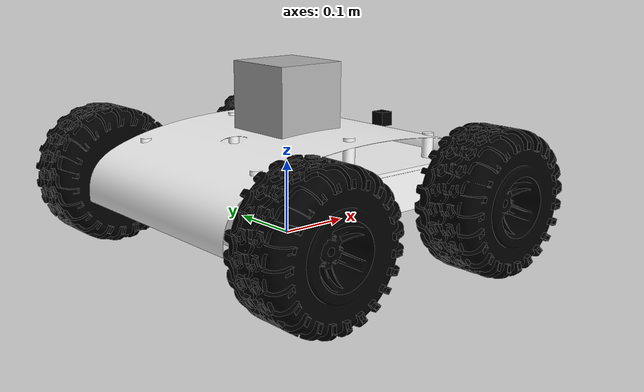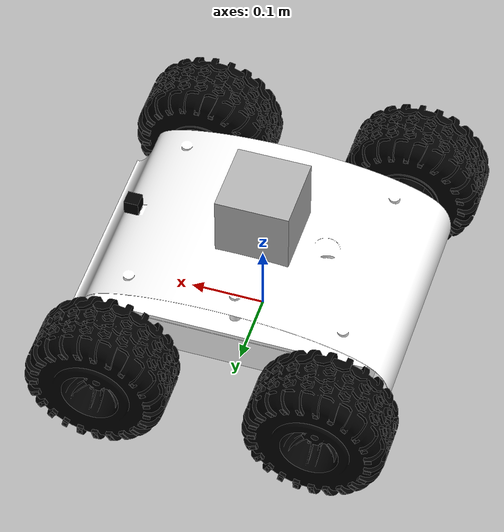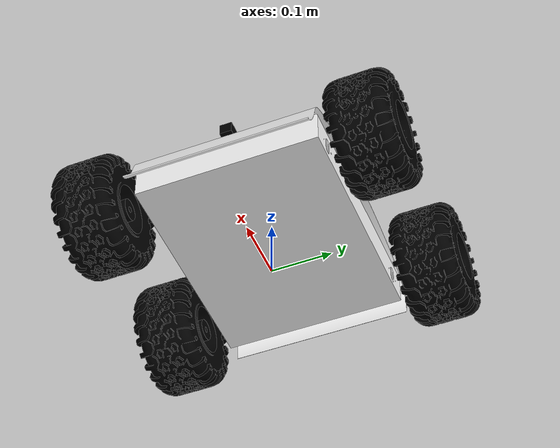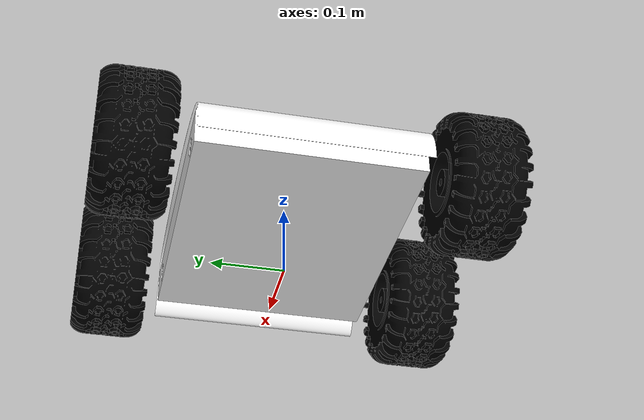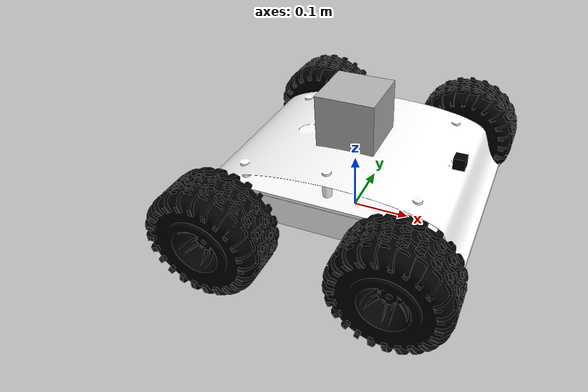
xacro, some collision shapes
<?xml version="1.0"?>

<robot xmlns:xacro="http://www.ros.org/wiki/xacro"
 	xmlns:sensor="http://playerstage.sourceforge.net/gazebo/xmlschema/#sensor"
    	xmlns:controller="http://playerstage.sourceforge.net/gazebo/xmlschema/#controller"
    	xmlns:interface="http://playerstage.sourceforge.net/gazebo/xmlschema/#interface"
	name="agrovexr_xacro">

  <xacro:property name="length_wheel" value="0.099" />
  <xacro:property name="radius_wheel" value="0.105" />
  <xacro:property name="camera_link" value="0.05" />
	<xacro:macro name="default_inertial" params="mass">
               <inertial>
                       <mass value="${mass}" />
                       <inertia ixx="0.00917256595" ixy="0.00000008023" ixz="-0.00000006107"
                                iyy="0.009174216667" iyz="0.00000003539"
                                izz="0.01764646301" />
               </inertial>
	</xacro:macro>
	<xacro:property name="camera_link" value="0.05" />

<!-- /////////////////////////AGROVEX ESTRUCTURA LINKS////////////////////////  -->

	<link name="base_footprint">
   		<visual>
			<geometry>
      				<box size="0.001 0.001 0.001"/>
     			</geometry>
			<origin rpy="0 0 0" xyz="0 0 0"/>
   		</visual>
		<xacro:default_inertial mass="0.0001"/>
 	</link>
 	<xacro:include filename="$(find agrovex_description)/urdf/agrovex.gazebo" />

	<gazebo reference="base_footprint">
		<material>Gazebo/Green</material>
		<turnGravityOff>false</turnGravityOff>
	</gazebo>

	<joint name="base_footprint_joint" type="fixed">
		<origin xyz="0 0 0" />
		<parent link="base_footprint" />
		<child link="base_link" />
	</joint>

	<link name="base_link">
   		<visual>
			<geometry>
      				<mesh filename="package://agrovex_description/meshes/estructura.dae" scale="1 1 1"	/>
     			</geometry>
			<origin	rpy="0 0 1.570796"	xyz="0 0 0.05"	/>
			<material name="white">
				<color rgba="1 1 1 1"/>
			</material>
   		</visual>
		<collision>
			<geometry>
       				<box size="0.49 0.3 0.12"/>
			</geometry>
      <origin rpy="0 0 0"  xyz="0 0 0.09"  />
		</collision>
   	 <inertial>
    	  <mass value="2.09216" />
     		 <origin xyz="0 0 0" rpy="0 0 0"/>
     		 <inertia ixx="1.0e-06" iyy="1.0e-06" izz="1.0e-06" ixy="0" iyz="0" ixz="0"/>
   	 </inertial>
 	</link>

 	<link name="wheel_1">
   		<visual>
     			<geometry>
       				<mesh filename="package://agrovex_description/meshes/wheel_1.dae" scale="1 1 1"	/>
     			</geometry>
			<origin	rpy="0 0 1.570796"	xyz="0 -0.036 -0.06"	/>
   			<material name="black">
				<color rgba="0 0 0 1"/>
			</material>
		</visual>
		<collision>
			<geometry>
       				<cylinder length="${length_wheel}" radius="${radius_wheel}"/>
			</geometry>
      <origin rpy="0 -1.570796 0" xyz="0.075 0 0"  />
		</collision>
		<xacro:default_inertial mass="0.1061929"/>
 	</link>

 	<link name="wheel_2">
   		<visual>
     			<geometry>
       				<mesh filename="package://agrovex_description/meshes/wheel_2.dae" scale="1 1 1" />
     			</geometry>
			    <origin  rpy="0 0 1.570796" xyz="0 -0.036 -0.06"  />
   			<material name="black"/>
   		</visual>
		<collision>
			<geometry>
       				<cylinder length="${length_wheel}" radius="${radius_wheel}"/>
			</geometry>
           <origin rpy="0 -1.570796 0" xyz="0.075 0 0"  />
		</collision>
		<xacro:default_inertial mass="0.1061929"/>

 	</link>

 	<link name="wheel_3">
   		<visual>
     			<geometry>
       				<mesh filename="package://agrovex_description/meshes/wheel_3.dae" scale="1 1 1" />
     			</geometry>
    			<origin  rpy="0 0 -1.570796" xyz="0 0.036 -0.06" />
   			<material name="black"/>
   		</visual>
		<collision>
			<geometry>
       				<cylinder length="${length_wheel}" radius="${radius_wheel}"/>
			</geometry>
           <origin rpy="0 -1.570796 0" xyz="-0.075 0 0"  />
		</collision>
		<xacro:default_inertial mass="0.1061929"/>
 	</link>

 	<link name="wheel_4">
   		<visual>
     			<geometry>
       				<mesh filename="package://agrovex_description/meshes/wheel_4.dae" scale="1 1 1" />
     			</geometry>
			  <origin  rpy="0 0 -1.570796" xyz="0 0.036 -0.06" />
   			<material name="black"/>
   		</visual>
		<collision>
			<geometry>
       				<cylinder length="${length_wheel}" radius="${radius_wheel}"/>
			</geometry>
           <origin rpy="0 -1.570796 0" xyz="-0.075 0 0"  />
		</collision>
		<xacro:default_inertial mass="0.1061929"/>

 	</link>

<!-- /////////////////////////AGROVEX ESTRUCTURA JOINTS////////////////////////  -->

 <joint name="base_to_wheel1" type="continuous">
      <parent link="base_link"  />
      <child  link="wheel_1"  />
      <origin rpy="0 0 -1.570796"   xyz="0.14725 -0.151 0.068"  />
      <axis xyz="-1 0 0" />
	<limit effort= "100" velocity="100"/>
  	<dynamics damping="0.0" friction="0.0"/>
 </joint>

 <joint name="base_to_wheel2" type="continuous">
      <parent link="base_link"  />
      <child  link="wheel_2"  />
      <origin rpy="0 0 -1.570796"   xyz="-0.14725 -0.151 0.068" />
      <axis xyz="-1 0 0" />
	<limit effort= "100" velocity="100"/>
  	<dynamics damping="0.0" friction="0.0"/>
</joint>

 <joint name="base_to_wheel3" type="continuous">
      <parent link="base_link"  />
      <child  link="wheel_3"  />
      <origin rpy="0 0 -1.570796"   xyz="-0.14725 0.151 0.068"  />
      <axis xyz="-1 0 0" />
	<limit effort= "100" velocity="100"/>
  	<dynamics damping="0.0" friction="0.0"/>
 </joint>

 <joint name="base_to_wheel4" type="continuous">
      <parent link="base_link"  />
      <child  link="wheel_4"  />
      <origin rpy="0 0 -1.570796" xyz="0.14725 0.151 0.068" />
      <axis xyz="-1 0 0" />
	<limit effort= "100" velocity="100"/>
  	<dynamics damping="0.0" friction="0.0"/>
 </joint>

<!-- /////////////////////////AGROVEX ESTRUCTURA TRANSMISSIONS////////////////////////  -->

<transmission name="wheel_m1">
	<type>transmission_interface/SimpleTransmission</type>
	<joint name="base_to_wheel1">
		<hardwareInterface>VelocityJointInterface</hardwareInterface>
	</joint>
	<actuator name="motor1">
		<hardwareInterface>EffortJointInterface</hardwareInterface>
		<mechanicalReduction>1</mechanicalReduction>
	</actuator>
</transmission>

<transmission name="wheel_m2">
	<type>transmission_interface/SimpleTransmission</type>
	<joint name="base_to_wheel2">
		<hardwareInterface>VelocityJointInterface</hardwareInterface>
	</joint>
	<actuator name="motor2">
		<hardwareInterface>EffortJointInterface</hardwareInterface>
		<mechanicalReduction>1</mechanicalReduction>
	</actuator>
</transmission>

<transmission name="wheel_m3">
	<type>transmission_interface/SimpleTransmission</type>
	<joint name="base_to_wheel3">
		<hardwareInterface>VelocityJointInterface</hardwareInterface>
	</joint>
	<actuator name="motor3">
		<hardwareInterface>EffortJointInterface</hardwareInterface>
		<mechanicalReduction>1</mechanicalReduction>
	</actuator>
</transmission>

<transmission name="wheel_m4">
	<type>transmission_interface/SimpleTransmission</type>
	<joint name="base_to_wheel4">
		<hardwareInterface>VelocityJointInterface</hardwareInterface>
	</joint>
	<actuator name="motor4">
		<hardwareInterface>EffortJointInterface</hardwareInterface>
		<mechanicalReduction>1</mechanicalReduction>
	</actuator>
</transmission>

  <!--////////////////// Camera JOINT ////////////////////-->
  <joint name="camera_joint" type="fixed">
    <axis xyz="0 1 0" />
    <origin xyz="0.18 0 0.138" rpy="0 0 0"/>
    <parent link="base_link"/>
    <child link="camera_link"/>
  </joint>

  <!-- ///////////////Camera LINK /////////////////////////7 -->
  <link name="camera_link">
    <collision>
      <origin xyz="0 0 0" rpy="0 0 0"/>
      <geometry>
	<box size="0.009 0.020 0.020"/>
      </geometry>
    </collision>

    <visual>
      <origin xyz="0 0 0" rpy="0 0 0"/>
      <geometry>
	<box size="0.020 0.020 0.020"/>
      </geometry>
      <material name="blac">
	<color rgba="0 0 0 1"/>
      </material>
    </visual>

    <inertial>
      <mass value="1e-5" />
      <origin xyz="0 0 0" rpy="0 0 0"/>
      <inertia ixx="1e-6" ixy="0" ixz="0" iyy="1e-6" iyz="0" izz="1e-6" />
    </inertial>
  </link>

<!--/////////////// Hokuyo JOINT /////////////// -->
  <joint name="hokuyo_joint" type="fixed">
    <origin xyz="0. 0 0.185" rpy="0 0 0"/>
    <parent link="base_link"/>
    <axis xyz="0 1 0" />
    <child link="hokuyo_link"/>
  </joint>

  <!--/////////////// Hokuyo LINK /////////////// -->
  <link name="hokuyo_link">
    <collision>
      <origin xyz="0 0 0" rpy="0 0 0"/>
      <geometry>
	<box size="0.1 0.1 0.1"/>
      </geometry>
    </collision>

    <visual>
      <origin xyz="0 0 0" rpy="0 0 0"/>
      <geometry>
        <mesh filename="package://agrovex_description/meshes/hokuyo.dae"/>
      </geometry>
    </visual>

    <inertial>
      <mass value="1e-5" />
      <origin xyz="0 0 0" rpy="0 0 0"/>
      <inertia ixx="1e-6" ixy="0" ixz="0" iyy="1e-6" iyz="0" izz="1e-6" />
    </inertial>
  </link>

  <!--/////////////// Drive controller //////////////-->

<gazebo>
  <plugin name="gazebo_ros_control" filename= "libgazebo_ros_control.so">
   <robotNamespace>/</robotNamespace>
  </plugin>
</gazebo>

</robot>
